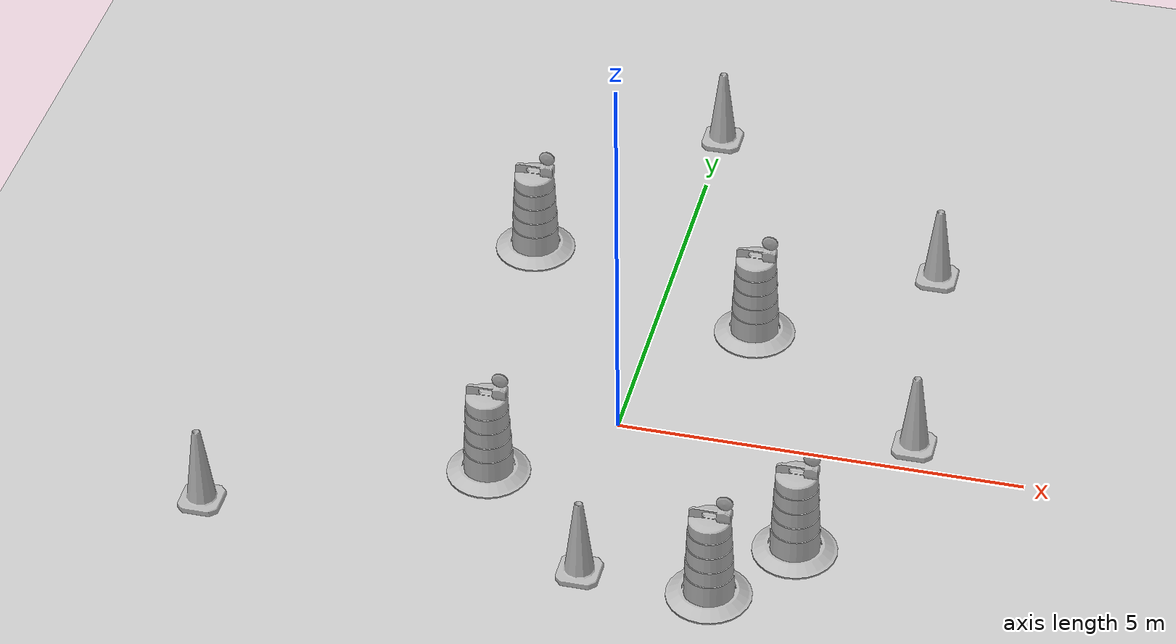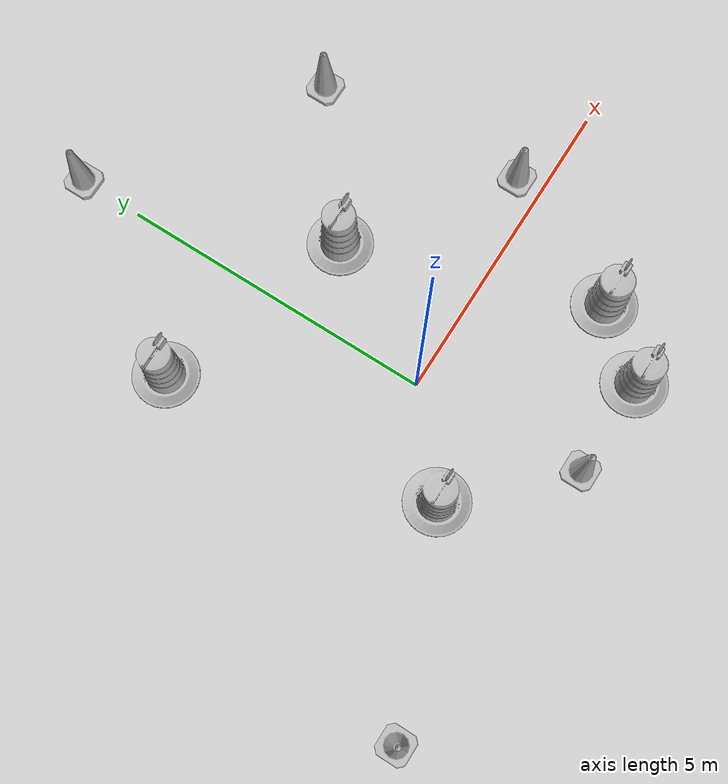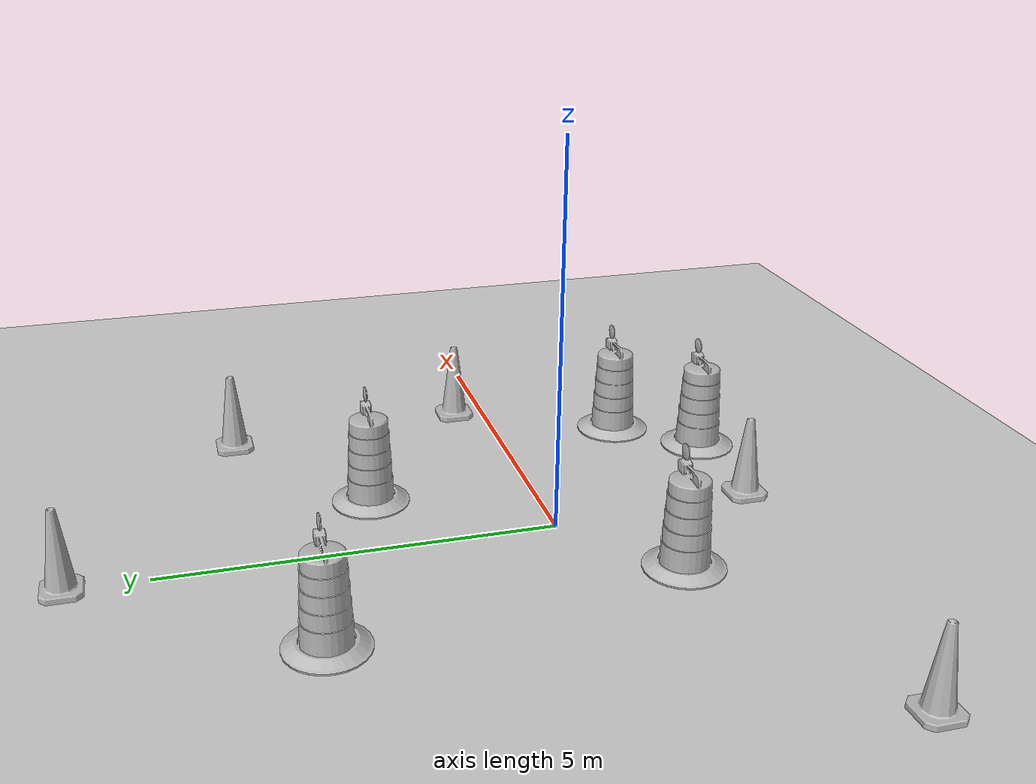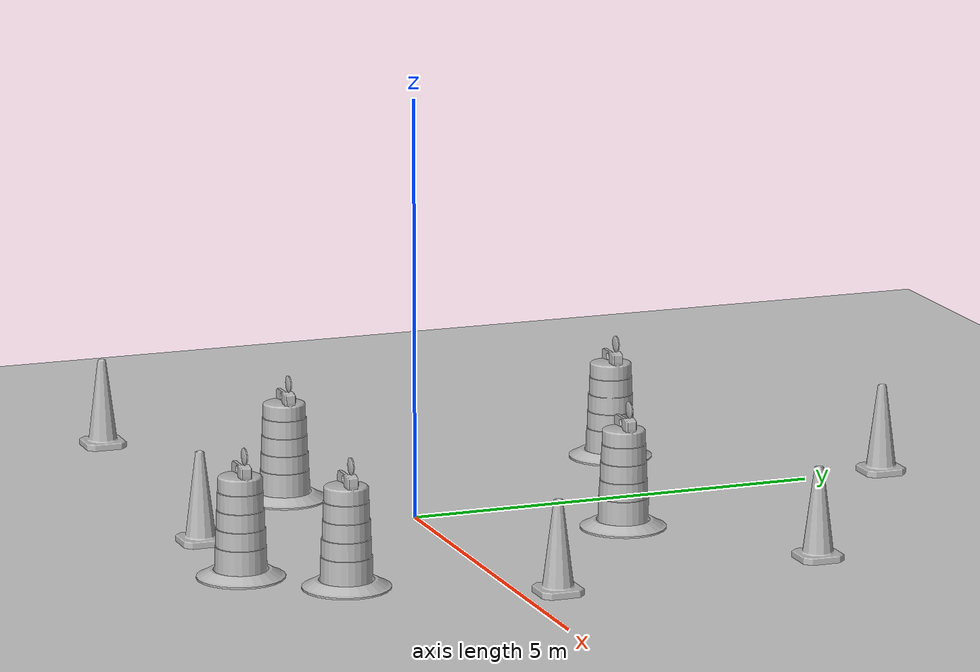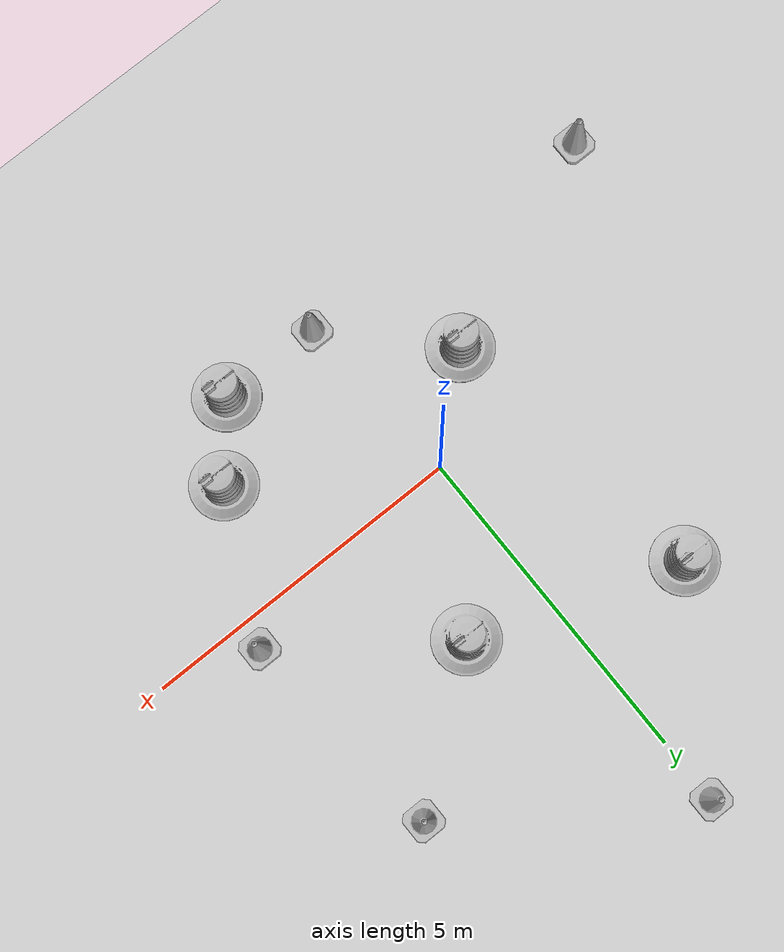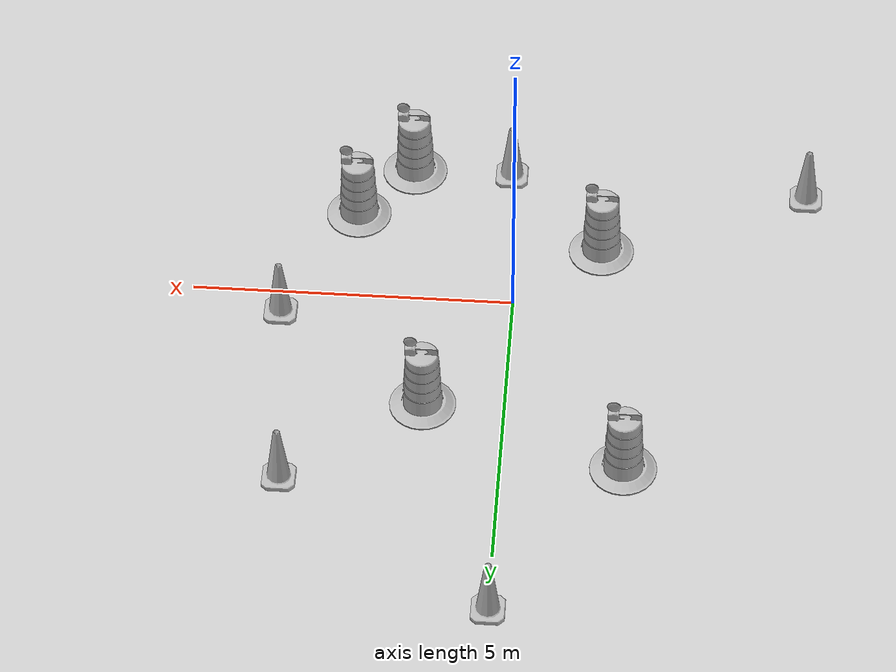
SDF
<sdf version="1.7">
 <world name="default">
  <light name="sun" type="directional">
   <pose>0 0 10 0 -0 0</pose>
   <diffuse>0.8 0.8 0.8 1</diffuse>
   <specular>0.2 0.2 0.2 1</specular>
   <attenuation>
    <range>1000</range>
    <constant>0.9</constant>
    <linear>0.01</linear>
    <quadratic>0.001</quadratic>
   </attenuation>
   <direction>-0.5 0.1 -0.9</direction>
   <spot><inner_angle>0</inner_angle><outer_angle>0</outer_angle><falloff>0</falloff></spot>
  </light>
  <model name="ground_plane">
   <static>1</static>
   <link name="link">
    <collision name="collision">
     <geometry><plane><normal>0 0 1</normal><size>100 100</size></plane></geometry>
     <surface>
      <contact><collide_bitmask>65535</collide_bitmask></contact>
      <friction><ode><mu>100</mu><mu2>50</mu2></ode></friction>
     </surface>
    </collision>
    <visual name="visual">
     <cast_shadows>0</cast_shadows>
     <geometry><plane><normal>0 0 1</normal><size>100 100</size></plane></geometry>
     <material>
      <script><uri>file://media/materials/scripts/gazebo.material</uri><name>Gazebo/Grey</name></script>
     </material>
    </visual>
   </link>
  </model>
  <gravity>0 0 -9.8</gravity>
  <magnetic_field>6e-06 2.3e-05 -4.2e-05</magnetic_field>
  <atmosphere type="adiabatic"/>
  <physics type="ode">
   <max_step_size>0.001</max_step_size>
   <real_time_factor>1</real_time_factor>
   <real_time_update_rate>1000</real_time_update_rate>
  </physics>
  <scene><ambient>0.4 0.4 0.4 1</ambient><background>0.7 0.7 0.7 1</background><shadows>1</shadows></scene>
  <audio><device>default</device></audio>
  <spherical_coordinates>
   <surface_model>EARTH_WGS84</surface_model>
   <latitude_deg>0</latitude_deg>
   <longitude_deg>0</longitude_deg>
   <elevation>0</elevation>
   <heading_deg>0</heading_deg>
  </spherical_coordinates>
  <model name="Construction Barrel">
   <link name="link">
    <inertial>
     <pose>0 0 0.4 0 -0 0</pose>
     <mass>500</mass>
     <inertia><ixx>51.2096</ixx><iyy>51.2096</iyy><izz>25</izz><ixy>0</ixy><ixz>0</ixz><iyz>0</iyz></inertia>
    </inertial>
    <collision name="collision">
     <geometry><mesh><uri>model://construction_barrel/meshes/construction_barrel.dae</uri></mesh></geometry>
    </collision>
    <visual name="visual">
     <geometry><mesh><uri>model://construction_barrel/meshes/construction_barrel.dae</uri></mesh></geometry>
    </visual>
   </link>
   <pose>-1.31627 -1.17332 -2e-06 1e-06 8e-06 -1.9e-05</pose>
  </model>
  <model name="Construction Cone">
   <link name="link">
    <collision name="collision">
     <geometry>
      <mesh><scale>10 10 10</scale><uri>model://construction_cone/meshes/construction_cone.dae</uri></mesh>
     </geometry>
    </collision>
    <visual name="visual">
     <geometry>
      <mesh><scale>10 10 10</scale><uri>model://construction_cone/meshes/construction_cone.dae</uri></mesh>
     </geometry>
    </visual>
    <inertial>
     <inertia><ixx>1</ixx><ixy>0</ixy><ixz>0</ixz><iyy>1</iyy><iyz>0</iyz><izz>1</izz></inertia>
     <mass>1</mass>
    </inertial>
   </link>
   <pose>0.184287 -2.69494 -0 0 -0 0</pose>
  </model>
  <model name="Construction Barrel_clone">
   <link name="link">
    <inertial>
     <pose>0 0 0.4 0 -0 0</pose>
     <mass>500</mass>
     <inertia><ixx>51.2096</ixx><iyy>51.2096</iyy><izz>25</izz><ixy>0</ixy><ixz>0</ixz><iyz>0</iyz></inertia>
    </inertial>
    <collision name="collision">
     <geometry><mesh><uri>model://construction_barrel/meshes/construction_barrel.dae</uri></mesh></geometry>
    </collision>
    <visual name="visual">
     <geometry><mesh><uri>model://construction_barrel/meshes/construction_barrel.dae</uri></mesh></geometry>
    </visual>
   </link>
   <pose>-1.85364 3.20413 -1e-06 4e-06 -1e-06 -1.9e-05</pose>
  </model>
  <model name="Construction Barrel_clone_0">
   <link name="link">
    <inertial>
     <pose>0 0 0.4 0 -0 0</pose>
     <mass>500</mass>
     <inertia><ixx>51.2096</ixx><iyy>51.2096</iyy><izz>25</izz><ixy>0</ixy><ixz>0</ixz><iyz>0</iyz></inertia>
    </inertial>
    <collision name="collision">
     <geometry><mesh><uri>model://construction_barrel/meshes/construction_barrel.dae</uri></mesh></geometry>
    </collision>
    <visual name="visual">
     <geometry><mesh><uri>model://construction_barrel/meshes/construction_barrel.dae</uri></mesh></geometry>
    </visual>
   </link>
   <pose>1.736 -2.70723 1e-06 4e-06 3e-06 -1.7e-05</pose>
  </model>
  <model name="Construction Barrel_clone_1">
   <link name="link">
    <inertial>
     <pose>0 0 0.4 0 -0 0</pose>
     <mass>500</mass>
     <inertia><ixx>51.2096</ixx><iyy>51.2096</iyy><izz>25</izz><ixy>0</ixy><ixz>0</ixz><iyz>0</iyz></inertia>
    </inertial>
    <collision name="collision">
     <geometry><mesh><uri>model://construction_barrel/meshes/construction_barrel.dae</uri></mesh></geometry>
    </collision>
    <visual name="visual">
     <geometry><mesh><uri>model://construction_barrel/meshes/construction_barrel.dae</uri></mesh></geometry>
    </visual>
   </link>
   <pose>1.25243 2.13862 -0 0 0 -2e-05</pose>
  </model>
  <model name="Construction Barrel_clone_2">
   <link name="link">
    <inertial>
     <pose>0 0 0.4 0 -0 0</pose>
     <mass>500</mass>
     <inertia><ixx>51.2096</ixx><iyy>51.2096</iyy><izz>25</izz><ixy>0</ixy><ixz>0</ixz><iyz>0</iyz></inertia>
    </inertial>
    <collision name="collision">
     <geometry><mesh><uri>model://construction_barrel/meshes/construction_barrel.dae</uri></mesh></geometry>
    </collision>
    <visual name="visual">
     <geometry><mesh><uri>model://construction_barrel/meshes/construction_barrel.dae</uri></mesh></geometry>
    </visual>
   </link>
   <pose>2.55469 -1.72441 0 0 0 -2e-05</pose>
  </model>
  <model name="Construction Cone_clone">
   <link name="link">
    <collision name="collision">
     <geometry>
      <mesh><scale>10 10 10</scale><uri>model://construction_cone/meshes/construction_cone.dae</uri></mesh>
     </geometry>
    </collision>
    <visual name="visual">
     <geometry>
      <mesh><scale>10 10 10</scale><uri>model://construction_cone/meshes/construction_cone.dae</uri></mesh>
     </geometry>
    </visual>
    <inertial>
     <inertia><ixx>1</ixx><ixy>0</ixy><ixz>0</ixz><iyy>1</iyy><iyz>0</iyz><izz>1</izz></inertia>
     <mass>1</mass>
    </inertial>
   </link>
   <pose>-4.50849 -2.48245 -0 0 -0 0</pose>
  </model>
  <model name="Construction Cone_clone_0">
   <link name="link">
    <collision name="collision">
     <geometry>
      <mesh><scale>10 10 10</scale><uri>model://construction_cone/meshes/construction_cone.dae</uri></mesh>
     </geometry>
    </collision>
    <visual name="visual">
     <geometry>
      <mesh><scale>10 10 10</scale><uri>model://construction_cone/meshes/construction_cone.dae</uri></mesh>
     </geometry>
    </visual>
    <inertial>
     <inertia><ixx>1</ixx><ixy>0</ixy><ixz>0</ixz><iyy>1</iyy><iyz>0</iyz><izz>1</izz></inertia>
     <mass>1</mass>
    </inertial>
   </link>
   <pose>3.59302 0.421159 -1e-06 1e-06 -2e-06 -0</pose>
  </model>
  <model name="Construction Cone_clone_1">
   <link name="link">
    <collision name="collision">
     <geometry>
      <mesh><scale>10 10 10</scale><uri>model://construction_cone/meshes/construction_cone.dae</uri></mesh>
     </geometry>
    </collision>
    <visual name="visual">
     <geometry>
      <mesh><scale>10 10 10</scale><uri>model://construction_cone/meshes/construction_cone.dae</uri></mesh>
     </geometry>
    </visual>
    <inertial>
     <inertia><ixx>1</ixx><ixy>0</ixy><ixz>0</ixz><iyy>1</iyy><iyz>0</iyz><izz>1</izz></inertia>
     <mass>1</mass>
    </inertial>
   </link>
   <pose>-0 6 0 -0 -0 -0</pose>
  </model>
  <model name="Construction Cone_clone_2">
   <link name="link">
    <collision name="collision">
     <geometry>
      <mesh><scale>10 10 10</scale><uri>model://construction_cone/meshes/construction_cone.dae</uri></mesh>
     </geometry>
    </collision>
    <visual name="visual">
     <geometry>
      <mesh><scale>10 10 10</scale><uri>model://construction_cone/meshes/construction_cone.dae</uri></mesh>
     </geometry>
    </visual>
    <inertial>
     <inertia><ixx>1</ixx><ixy>0</ixy><ixz>0</ixz><iyy>1</iyy><iyz>0</iyz><izz>1</izz></inertia>
     <mass>1</mass>
    </inertial>
   </link>
   <pose>3.29539 3.72356 -0 0 -0 0</pose>
  </model>
 </world>
</sdf>
